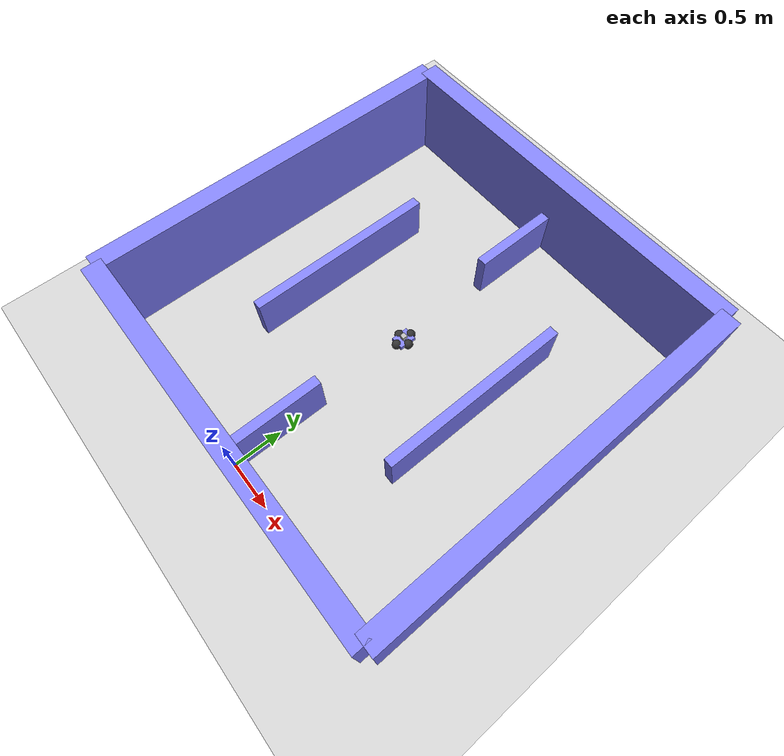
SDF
<?xml version="1.0" ?>
<sdf version="1.6">
  <world name="diff_drive">

    <physics name="1ms" type="ignored">
      <max_step_size>0.001</max_step_size>
      <real_time_factor>1.0</real_time_factor>
    </physics>
    <plugin
      filename="gz-sim-physics-system"
      name="gz::sim::systems::Physics">
    </plugin>
    <plugin
      filename="gz-sim-user-commands-system"
      name="gz::sim::systems::UserCommands">
    </plugin>
    <plugin
      filename="gz-sim-scene-broadcaster-system"
      name="gz::sim::systems::SceneBroadcaster">
    </plugin>
    <plugin
      filename="gz-sim-sensors-system"
      name="gz::sim::systems::Sensors">
      <render_engine>ogre2</render_engine>
    </plugin>

    <light type="directional" name="sun">
      <cast_shadows>true</cast_shadows>
      <pose>0 0 10 0 0 0</pose>
      <diffuse>1 1 1 1</diffuse>
      <specular>0.5 0.5 0.5 1</specular>
      <attenuation>
        <range>1000</range>
        <constant>0.9</constant>
        <linear>0.01</linear>
        <quadratic>0.001</quadratic>
      </attenuation>
      <direction>-0.5 0.1 -0.9</direction>
    </light>

    <model name="ground_plane">
      <static>true</static>
      <link name="link">
        <collision name="collision">
          <geometry>
            <plane>
              <normal>0 0 1</normal>
              <size>100 100</size>
            </plane>
          </geometry>
        </collision>
        <visual name="visual">
          <geometry>
            <plane>
              <normal>0 0 1</normal>
              <size>100 100</size>
            </plane>
          </geometry>
          <material>
            <ambient>0.8 0.8 0.8 1</ambient>
            <diffuse>0.8 0.8 0.8 1</diffuse>
            <specular>0.8 0.8 0.8 1</specular>
          </material>
        </visual>
      </link>
    </model>

    <model name='wall_front'>
      <static>true</static>
        <pose>2 2 0.5 0 0 0</pose>
        <link name='ob'>
        <visual name='visual'>
            <geometry>
              <box>
                <size>0.2 4.0 1.0</size>
              </box>
            </geometry>
            <material>
              <ambient>0.5 0.5 1.0 1</ambient>
              <diffuse>0.5 0.5 1.0 1</diffuse>
              <specular>0.0 0.0 1.0 1</specular>
            </material>
          </visual>
          <collision name='collision'>
            <geometry>
              <box>
                <size>0.2 4.0 1.0</size>
              </box>
            </geometry>
          </collision>
        </link>
    </model>

    <model name='wall_back'>
      <static>true</static>
        <pose>-2 2 0.5 0 0 0</pose>
        <link name='ob'>
        <visual name='visual'>
            <geometry>
              <box>
                <size>0.2 4.0 1.0</size>
              </box>
            </geometry>
            <material>
              <ambient>0.5 0.5 1.0 1</ambient>
              <diffuse>0.5 0.5 1.0 1</diffuse>
              <specular>0.0 0.0 1.0 1</specular>
            </material>
          </visual>
          <collision name='collision'>
            <geometry>
              <box>
                <size>0.2 4.0 1.0</size>
              </box>
            </geometry>
          </collision>
        </link>
    </model>

    <model name='wall_right'>
      <static>true</static>
        <pose>0 0 0.5 0 0 0</pose>
        <link name='ob'>
        <visual name='visual'>
            <geometry>
              <box>
                <size>4.0 0.2 1.0</size>
              </box>
            </geometry>
            <material>
              <ambient>0.5 0.5 1.0 1</ambient>
              <diffuse>0.5 0.5 1.0 1</diffuse>
              <specular>0.0 0.0 1.0 1</specular>
            </material>
          </visual>
          <collision name='collision'>
            <geometry>
              <box>
                <size>4.0 0.2 1.0</size>
              </box>
            </geometry>
          </collision>
        </link>
    </model>

    <model name='wall_left'>
      <static>true</static>
        <pose>0 4 0.5 0 0 0</pose>
        <link name='ob'>
        <visual name='visual'>
            <geometry>
              <box>
                <size>4.0 0.2 1.0</size>
              </box>
            </geometry>
            <material>
              <ambient>0.5 0.5 1.0 1</ambient>
              <diffuse>0.5 0.5 1.0 1</diffuse>
              <specular>0.0 0.0 1.0 1</specular>
            </material>
          </visual>
          <collision name='collision'>
            <geometry>
              <box>
                <size>4.0 0.2 1.0</size>
              </box>
            </geometry>
          </collision>
        </link>
    </model>

    <model name='wall_1'>
      <static>true</static>
        <pose>1 2 0.25 0 0 0</pose>
        <link name='ob'>
        <visual name='visual'>
            <geometry>
              <box>
                <size>0.1 2.0 0.5</size>
              </box>
            </geometry>
            <material>
              <ambient>0.5 0.5 1.0 1</ambient>
              <diffuse>0.5 0.5 1.0 1</diffuse>
              <specular>0.0 0.0 1.0 1</specular>
            </material>
          </visual>
          <collision name='collision'>
            <geometry>
              <box>
                <size>0.1 2.0 0.5</size>
              </box>
            </geometry>
          </collision>
        </link>
    </model>

    <model name='wall_2'>
      <static>true</static>
        <pose>-1 2 0.25 0 0 0</pose>
        <link name='ob'>
        <visual name='visual'>
            <geometry>
              <box>
                <size>0.1 2.0 0.5</size>
              </box>
            </geometry>
            <material>
              <ambient>0.5 0.5 1.0 1</ambient>
              <diffuse>0.5 0.5 1.0 1</diffuse>
              <specular>0.0 0.0 1.0 1</specular>
            </material>
          </visual>
          <collision name='collision'>
            <geometry>
              <box>
                <size>0.1 2.0 0.5</size>
              </box>
            </geometry>
          </collision>
        </link>
    </model>

    <model name='wall_3'>
      <static>true</static>
        <pose>0 3.5 0.25 0 0 0</pose>
        <link name='ob'>
        <visual name='visual'>
            <geometry>
              <box>
                <size>0.1 1.0 0.5</size>
              </box>
            </geometry>
            <material>
              <ambient>0.5 0.5 1.0 1</ambient>
              <diffuse>0.5 0.5 1.0 1</diffuse>
              <specular>0.0 0.0 1.0 1</specular>
            </material>
          </visual>
          <collision name='collision'>
            <geometry>
              <box>
                <size>0.1 1.0 0.5</size>
              </box>
            </geometry>
          </collision>
        </link>
    </model>

    <model name='wall_4'>
      <static>true</static>
        <pose>0 0.5 0.25 0 0 0</pose>
        <link name='ob'>
        <visual name='visual'>
            <geometry>
              <box>
                <size>0.1 1.0 0.5</size>
              </box>
            </geometry>
            <material>
              <ambient>0.5 0.5 1.0 1</ambient>
              <diffuse>0.5 0.5 1.0 1</diffuse>
              <specular>0.0 0.0 1.0 1</specular>
            </material>
          </visual>
          <collision name='collision'>
            <geometry>
              <box>
                <size>0.1 1.0 0.5</size>
              </box>
            </geometry>
          </collision>
        </link>
    </model>
    <model name='vehicle_blue'>
      <pose>0 2 0 0 -0 0</pose>

      <link name='chassis'>
        <pose>0 0 0.055 0 0 0</pose>
        <inertial>
          <mass>0.8</mass>
          <inertia>
            <ixx>0.00233</ixx>
            <ixy>0</ixy>
            <ixz>0</ixz>
            <iyy>0.00147</iyy>
            <iyz>0</iyz>
            <izz>0.00347</izz>
          </inertia>
        </inertial>
        <visual name='visual'>
          <geometry>
            <box>
              <size>0.14 0.18 0.05</size>
            </box>
          </geometry>
          <material>
            <ambient>0.5 0.5 1.0 1</ambient>
            <diffuse>0.5 0.5 1.0 1</diffuse>
            <specular>0.0 0.0 1.0 1</specular>
          </material>
        </visual>
        <collision name='collision'>
          <geometry>
            <box>
              <size>0.14 0.18 0.05</size>
            </box>
          </geometry>
        </collision>
      </link>

      <link name="lidar_link">
        <pose>0 0 0.105 0 0 0</pose>
        <inertial>
          <mass>0.1</mass>
          <inertia>
            <ixx>0.0000416667</ixx>
            <iyy>0.0000416667</iyy>
            <izz>0.0000416667</izz>
          </inertia>
        </inertial>
        <collision name="collision">
          <geometry>
            <box>
              <size>0.05 0.05 0.05</size>
            </box>
          </geometry>
        </collision>
        <visual name="visual">
          <geometry>
            <box>
              <size>0.05 0.05 0.05</size>
            </box>
          </geometry>
        </visual>
        <sensor name='gpu_lidar' type='gpu_lidar'>
        <pose>0 0 0 0 0 0</pose>
          <topic>lidar2</topic>
          <update_rate>10</update_rate>
          <lidar>
            <scan>
              <horizontal>
                <samples>360</samples>
                <resolution>1</resolution>
                <min_angle>0</min_angle>
                <max_angle>6.2657</max_angle>
              </horizontal>
              <vertical>
                <samples>1</samples>
                <resolution>1</resolution>
                <min_angle>0.0</min_angle>
                <max_angle>0.0</max_angle>
              </vertical>
            </scan>
            <range>
              <min>0.15</min>
              <max>10.0</max>
              <resolution>0.01</resolution>
            </range>
          </lidar>
          <visualize>true</visualize>
        </sensor>
      </link>

      <link name='left_wheel'>
        <pose>0 0.09 0.05 -1.5707 0 0</pose>
        <inertial>
          <mass>0.1</mass>
          <inertia>
            <ixx>0.0001</ixx>
            <ixy>0</ixy>
            <ixz>0</ixz>
            <iyy>0.0001</iyy>
            <iyz>0</iyz>
            <izz>0.0001</izz>
          </inertia>
        </inertial>
        <visual name='visual'>
          <geometry>
            <sphere>
              <radius>0.05</radius>
            </sphere>
          </geometry>
          <material>
            <ambient>0.2 0.2 0.2 1</ambient>
            <diffuse>0.2 0.2 0.2 1</diffuse>
            <specular>0.2 0.2 0.2 1</specular>
          </material>
        </visual>
        <collision name='collision'>
          <geometry>
            <sphere>
              <radius>0.05</radius>
            </sphere>
          </geometry>
          <surface>
            <friction>
              <ode>
                <mu>1</mu>
                <mu2>1</mu2>
                <slip1>0.035</slip1>
                <slip2>0</slip2>
                <fdir1>0 0 1</fdir1>
              </ode>
              <bullet>
                <friction>1</friction>
                <friction2>1</friction2>
                <rolling_friction>0.1</rolling_friction>
              </bullet>
            </friction>
          </surface>
        </collision>
      </link>

      <link name='right_wheel'>
        <pose>0 -0.09 0.05 -1.5707 0 0</pose>
        <inertial>
          <mass>0.1</mass>
          <inertia>
            <ixx>0.0001</ixx>
            <ixy>0</ixy>
            <ixz>0</ixz>
            <iyy>0.0001</iyy>
            <iyz>0</iyz>
            <izz>0.0001</izz>
          </inertia>
        </inertial>
        <visual name='visual'>
          <geometry>
            <sphere>
              <radius>0.05</radius>
            </sphere>
          </geometry>
          <material>
            <ambient>0.2 0.2 0.2 1</ambient>
            <diffuse>0.2 0.2 0.2 1</diffuse>
            <specular>0.2 0.2 0.2 1</specular>
          </material>
        </visual>
        <collision name='collision'>
          <geometry>
            <sphere>
              <radius>0.05</radius>
            </sphere>
          </geometry>
          <surface>
            <friction>
              <ode>
                <mu>1</mu>
                <mu2>1</mu2>
                <slip1>0.035</slip1>
                <slip2>0</slip2>
                <fdir1>0 0 1</fdir1>
              </ode>
              <bullet>
                <friction>1</friction>
                <friction2>1</friction2>
                <rolling_friction>0.1</rolling_friction>
              </bullet>
            </friction>
          </surface>
        </collision>
      </link>

      <link name='caster_front'>
        <pose>0.07 0 0.05 0 -0 0</pose>
        <inertial>
          <mass>0.05</mass>
          <inertia>
            <ixx>0.00005</ixx>
            <ixy>0</ixy>
            <ixz>0</ixz>
            <iyy>0.00005</iyy>
            <iyz>0</iyz>
            <izz>0.00005</izz>
          </inertia>
        </inertial>
        <visual name='visual'>
          <geometry>
            <sphere>
              <radius>0.05</radius>
            </sphere>
          </geometry>
          <material>
            <ambient>0.2 0.2 0.2 1</ambient>
            <diffuse>0.2 0.2 0.2 1</diffuse>
            <specular>0.2 0.2 0.2 1</specular>
          </material>
        </visual>
        <collision name='collision'>
          <geometry>
            <sphere>
              <radius>0.05</radius>
            </sphere>
          </geometry>
        </collision>
      </link>

      <link name='caster_back'>
        <pose>-0.07 0 0.05 0 -0 0</pose>
        <inertial>
          <mass>0.05</mass>
          <inertia>
            <ixx>0.00005</ixx>
            <ixy>0</ixy>
            <ixz>0</ixz>
            <iyy>0.00005</iyy>
            <iyz>0</iyz>
            <izz>0.00005</izz>
          </inertia>
        </inertial>
        <visual name='visual'>
          <geometry>
            <sphere>
              <radius>0.05</radius>
            </sphere>
          </geometry>
          <material>
            <ambient>0.2 0.2 0.2 1</ambient>
            <diffuse>0.2 0.2 0.2 1</diffuse>
            <specular>0.2 0.2 0.2 1</specular>
          </material>
        </visual>
        <collision name='collision'>
          <geometry>
            <sphere>
              <radius>0.05</radius>
            </sphere>
          </geometry>
        </collision>
      </link>

      <joint name='lidar_sensor_joint' type='fixed'>
        <parent>chassis</parent>
        <child>lidar_link</child>
      </joint>

      <joint name='left_wheel_joint' type='revolute'>
        <parent>chassis</parent>
        <child>left_wheel</child>
        <axis>
          <xyz>0 0 1</xyz>
          <limit>
            <lower>-1.79769e+308</lower>
            <upper>1.79769e+308</upper>
          </limit>
        </axis>
      </joint>

      <joint name='right_wheel_joint' type='revolute'>
        <parent>chassis</parent>
        <child>right_wheel</child>
        <axis>
          <xyz>0 0 1</xyz>
          <limit>
            <lower>-1.79769e+308</lower>
            <upper>1.79769e+308</upper>
          </limit>
        </axis>
      </joint>

      <joint name='caster_front_joint' type='ball'>
        <parent>chassis</parent>
        <child>caster_front</child>
      </joint>

      <joint name='caster_back_joint' type='ball'>
        <parent>chassis</parent>
        <child>caster_back</child>
      </joint>

      <plugin
        filename="gz-sim-diff-drive-system"
        name="gz::sim::systems::DiffDrive">
        <left_joint>left_wheel_joint</left_joint>
        <right_joint>right_wheel_joint</right_joint>
        <wheel_separation>0.18</wheel_separation>
        <wheel_radius>0.05</wheel_radius>
        <odom_publish_frequency>1</odom_publish_frequency>
        <max_linear_acceleration>1</max_linear_acceleration>
        <min_linear_acceleration>-1</min_linear_acceleration>
        <max_angular_acceleration>2</max_angular_acceleration>
        <min_angular_acceleration>-2</min_angular_acceleration>
        <max_linear_velocity>0.5</max_linear_velocity>
        <min_linear_velocity>-0.5</min_linear_velocity>
        <max_angular_velocity>1</max_angular_velocity>
        <min_angular_velocity>-1</min_angular_velocity>
      </plugin>

    </model>

  </world>
</sdf>
